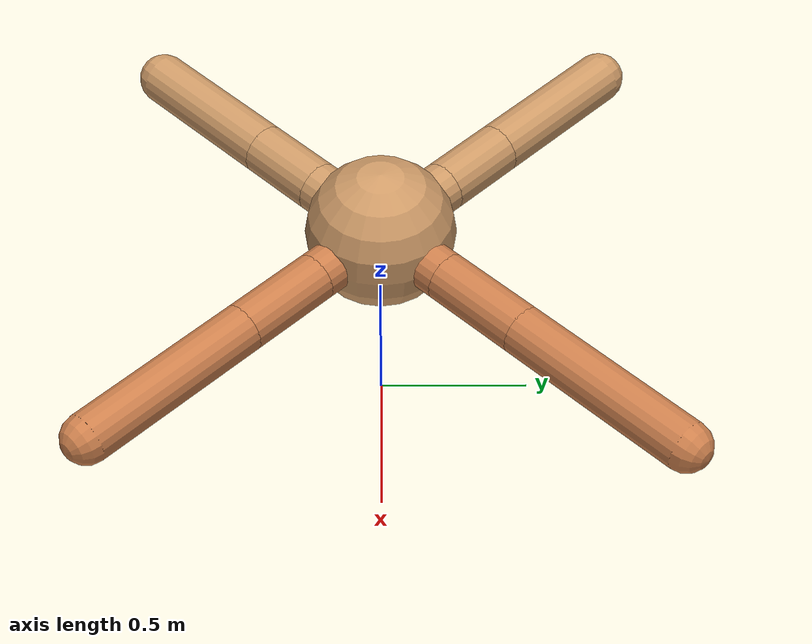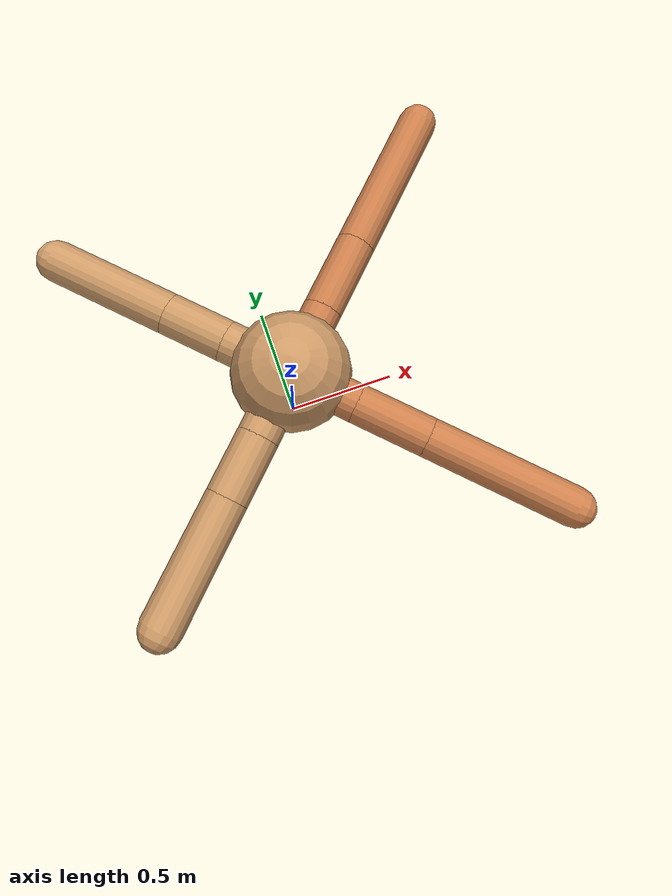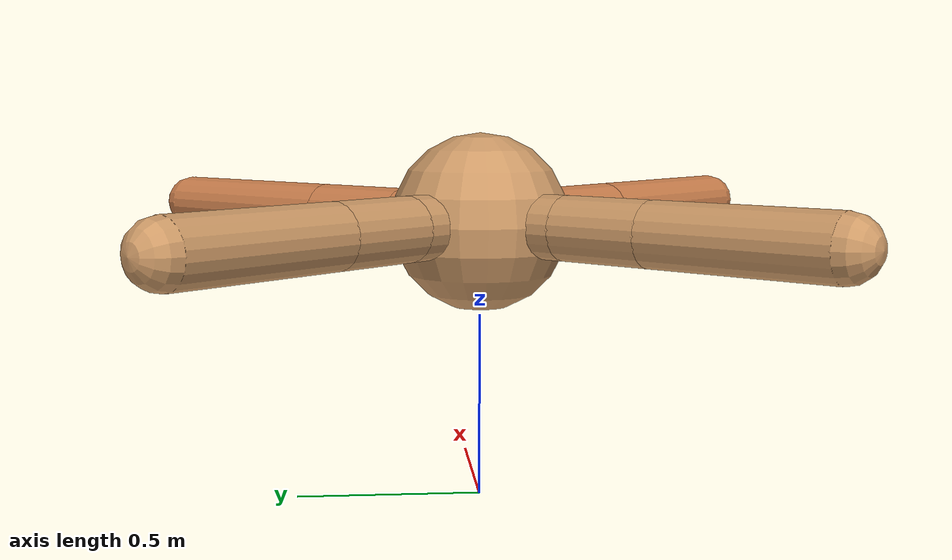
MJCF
<?xml version="1.0" ?>
<mujoco model="ant">

	<compiler angle="degree" coordinate="local" inertiafromgeom="true"/>

	<option integrator="RK4" timestep="0.01"/>

	<custom>

		<numeric data="0.0 0.0 0.55 1.0 0.0 0.0 0.0 0.0 1.0 0.0 -1.0 0.0 -1.0 0.0 1.0" name="init_qpos"/>

	</custom>

	<default>

		<joint armature="1" damping="1" limited="true"/>

		<geom conaffinity="0" condim="3" density="5.0" friction="1.5 0.1 0.1" margin="0.01" rgba="0.8 0.6 0.4 1"/>

	</default>

	<worldbody>

		<body name="torso" pos="0 0 0.75">

			<geom name="torso_geom" pos="0 0 0" size="0.2386801118083641" type="sphere"/>

			<!--joint armature="0" damping="0" limited="false" margin="0.01" name="root" pos="0 0 0" type="free"/-->

			<body name="front_left_leg" pos="0 0 0">

				<geom fromto="0 0 0 0.2 0.2 0" name="aux_1_geom" size="0.07918468555024759" type="capsule" rgba=".8 .5 .3 1"/>

				<body name="aux_1" pos="0.2 0.2 0">

					<joint axis="0 0 1" name="hip_1" pos="0.0 0.0 0.0" range="-40 40" type="hinge"/>

					<geom fromto="0 0 0 0.21943191200181614 0.21943191200181614 0" name="left_leg_geom" size="0.07918468555024759" type="capsule" rgba=".8 .5 .3 1"/>

					<body pos="0.21943191200181614 0.21943191200181614 0" name="front_left_foot">

						<joint axis="-1 1 0" name="ankle_1" pos="0.0 0.0 0.0" range="30 100" type="hinge"/>

						<geom fromto="0 0 0 0.4388638240036323 0.4388638240036323 0" name="left_ankle_geom" size="0.07918468555024759" type="capsule" rgba=".8 .5 .3 1"/>

					</body>

				</body>

			</body>

			<body name="front_right_leg" pos="0 0 0">

				<geom fromto="0 0 0 -0.2 0.2 0" name="aux_2_geom" size="0.0848420120780948" type="capsule"/>

				<body name="aux_2" pos="-0.2 0.2 0">

					<joint axis="0 0 1" name="hip_2" pos="0.0 0.0 0.0" range="-40 40" type="hinge"/>

					<geom fromto="0 0 0 -0.18125651022904932 0.18125651022904932 0" name="right_leg_geom" size="0.0848420120780948" type="capsule"/>

					<body pos="-0.18125651022904932 0.18125651022904932 0" name="front_right_foot">

						<joint axis="1 1 0" name="ankle_2" pos="0.0 0.0 0.0" range="-100 -30" type="hinge"/>

						<geom fromto="0 0 0 -0.36251302045809863 0.36251302045809863 0" name="right_ankle_geom" size="0.0848420120780948" type="capsule"/>

					</body>

				</body>

			</body>

			<body name="left_back_leg" pos="0 0 0">

				<geom fromto="0 0 0 -0.2 -0.2 0" name="aux_3_geom" size="0.08456518326174138" type="capsule"/>

				<body name="aux_3" pos="-0.2 -0.2 0">

					<joint axis="0 0 1" name="hip_3" pos="0.0 0.0 0.0" range="-40 40" type="hinge"/>

					<geom fromto="0 0 0 -0.18025096251252992 -0.18025096251252992 0" name="back_leg_geom" size="0.08456518326174138" type="capsule"/>

					<body pos="-0.18025096251252992 -0.18025096251252992 0" name="left_back_foot">

						<joint axis="-1 1 0" name="ankle_3" pos="0.0 0.0 0.0" range="-100 -30" type="hinge"/>

						<geom fromto="0 0 0 -0.36050192502505984 -0.36050192502505984 0" name="third_ankle_geom" size="0.08456518326174138" type="capsule"/>

					</body>

				</body>

			</body>

			<body name="right_back_leg" pos="0 0 0">

				<geom fromto="0 0 0 0.2 -0.2 0" name="aux_4_geom" size="0.07861738505881592" type="capsule" rgba=".8 .5 .3 1"/>

				<body name="aux_4" pos="0.2 -0.2 0">

					<joint axis="0 0 1" name="hip_4" pos="0.0 0.0 0.0" range="-40 40" type="hinge"/>

					<geom fromto="0 0 0 0.20943392887762247 -0.20943392887762247 0" name="rightback_leg_geom" size="0.07861738505881592" type="capsule" rgba=".8 .5 .3 1"/>

					<body pos="0.20943392887762247 -0.20943392887762247 0" name="right_back_foot">

						<joint axis="1 1 0" name="ankle_4" pos="0.0 0.0 0.0" range="30 100" type="hinge"/>

						<geom fromto="0 0 0 0.41886785775524493 -0.41886785775524493 0" name="fourth_ankle_geom" size="0.07861738505881592" type="capsule" rgba=".8 .5 .3 1"/>

					</body>

				</body>

			</body>

		</body>

	</worldbody>

	<actuator>

		<motor ctrllimited="true" ctrlrange="-1.0 1.0" joint="hip_4" gear="150"/>

		<motor ctrllimited="true" ctrlrange="-1.0 1.0" joint="ankle_4" gear="150"/>

		<motor ctrllimited="true" ctrlrange="-1.0 1.0" joint="hip_1" gear="150"/>

		<motor ctrllimited="true" ctrlrange="-1.0 1.0" joint="ankle_1" gear="150"/>

		<motor ctrllimited="true" ctrlrange="-1.0 1.0" joint="hip_2" gear="150"/>

		<motor ctrllimited="true" ctrlrange="-1.0 1.0" joint="ankle_2" gear="150"/>

		<motor ctrllimited="true" ctrlrange="-1.0 1.0" joint="hip_3" gear="150"/>

		<motor ctrllimited="true" ctrlrange="-1.0 1.0" joint="ankle_3" gear="150"/>

	</actuator>

</mujoco>
